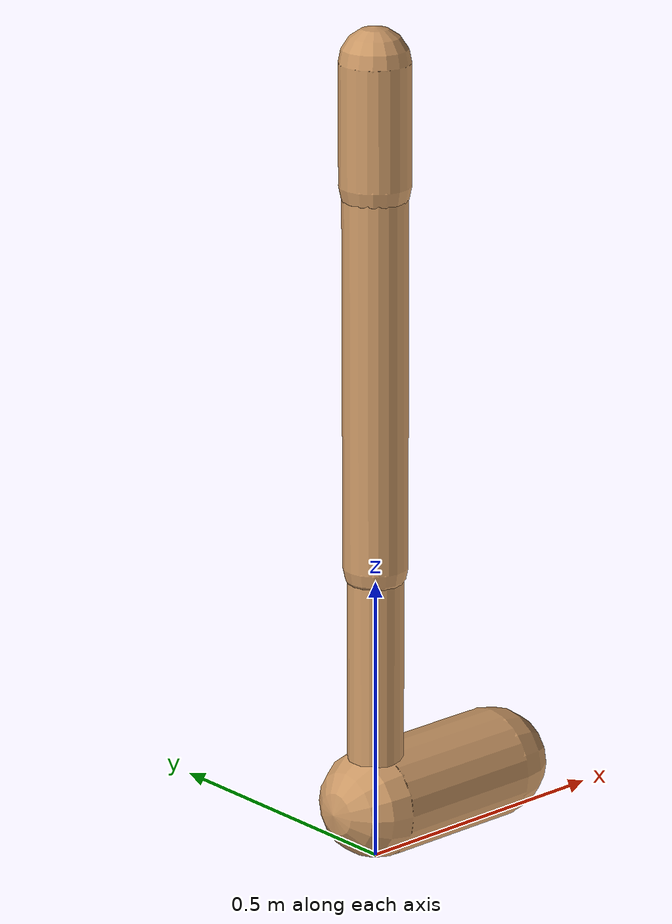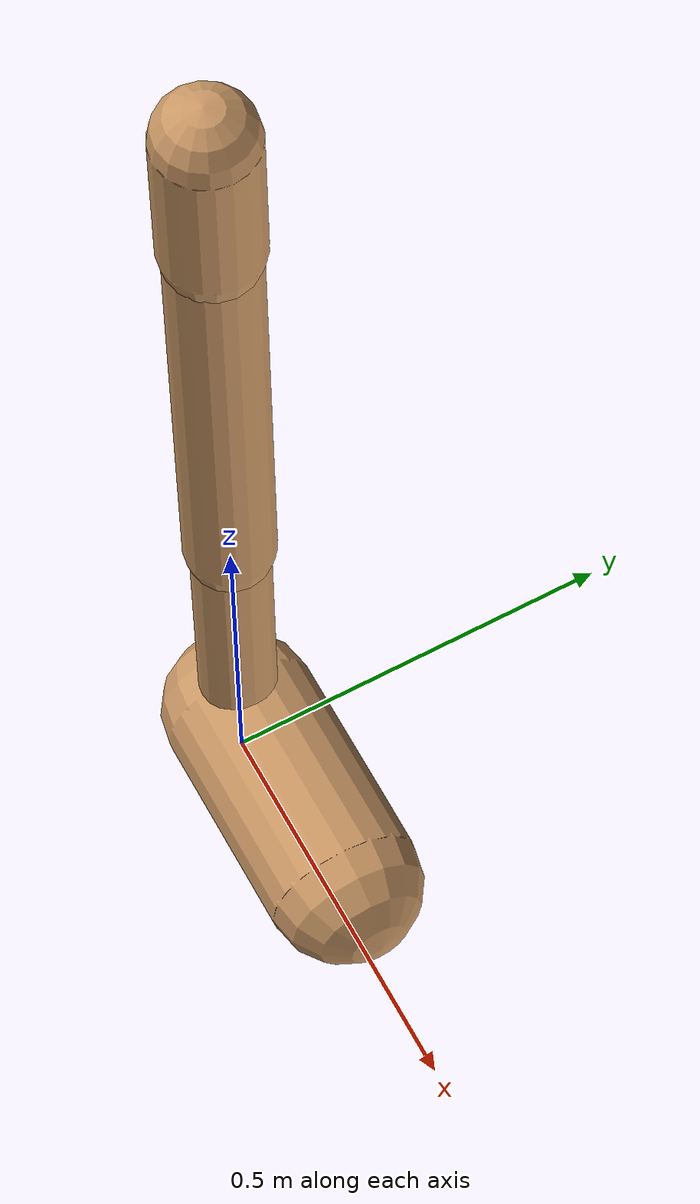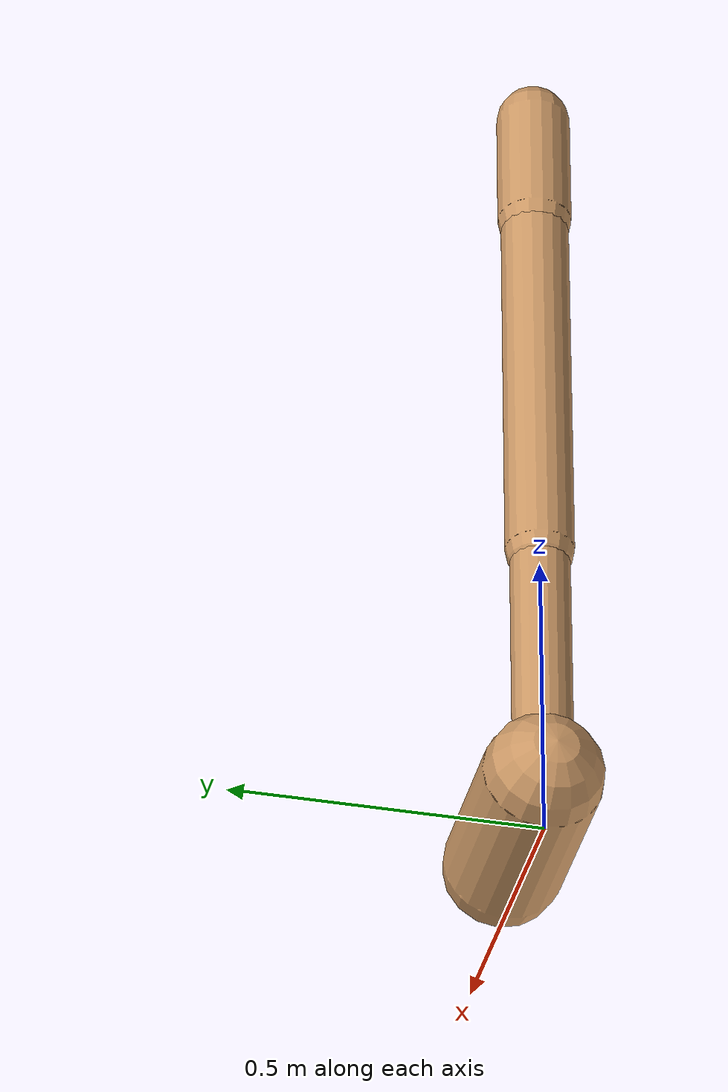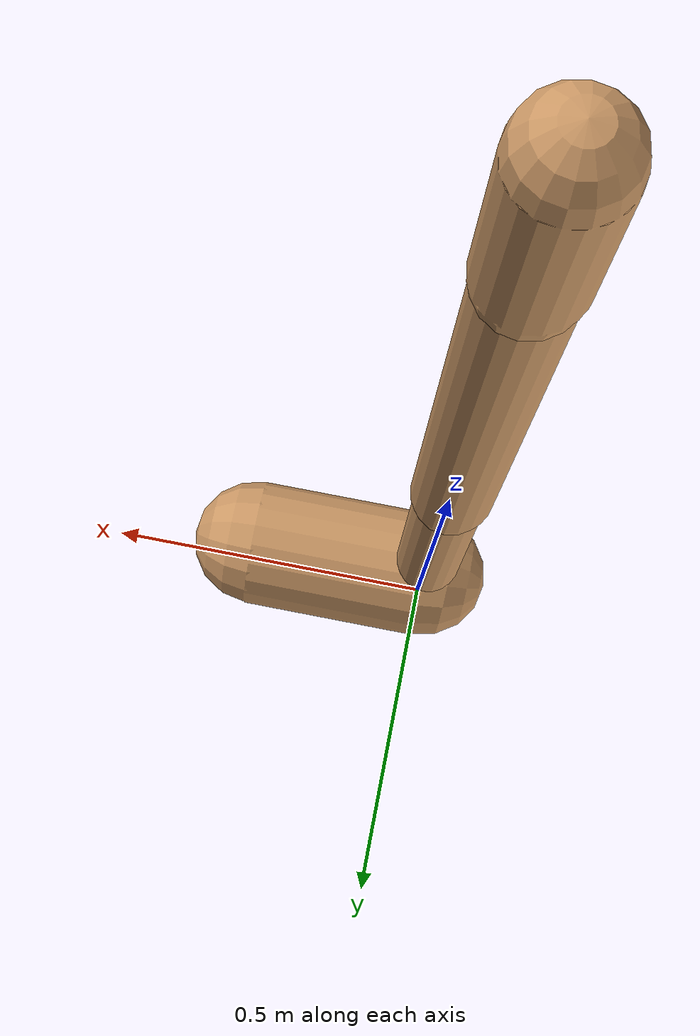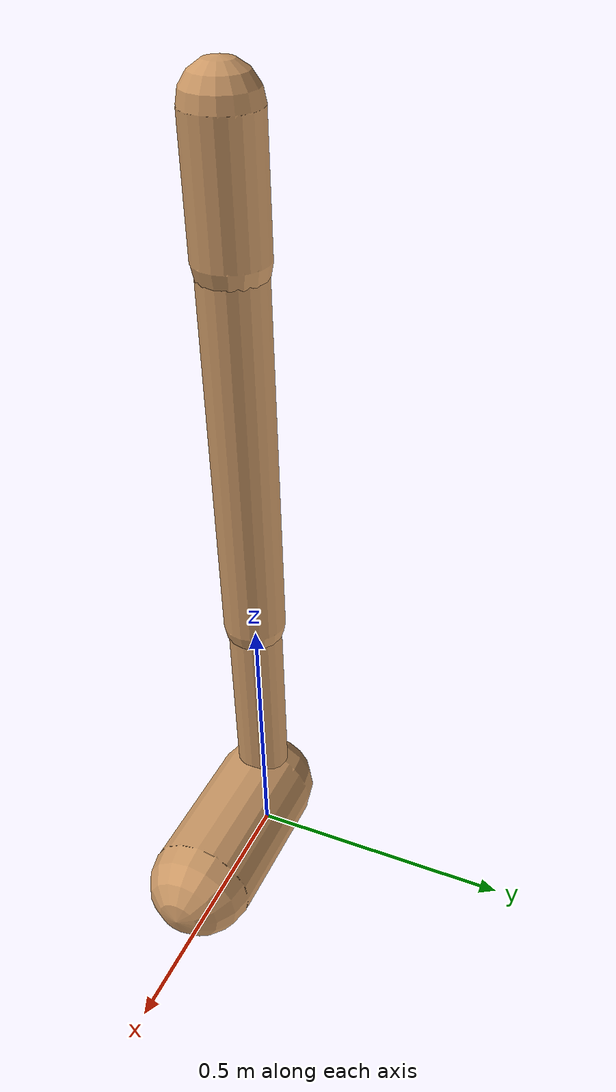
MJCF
<mujoco model="walker2d">
    <compiler angle="degree" coordinate="global" inertiafromgeom="true" />
    <default>
        <joint armature="0.01" damping=".1" limited="true" />
        <geom conaffinity="0" condim="3" contype="1" density="1000" friction="0.8 .1 .1" rgba="0.8 0.6 .4 1" />
    </default>
    <option integrator="RK4" timestep="0.002" />
    <worldbody>
        <body name="torso">
            <geom fromto="0 0 1.4043 0 0 1.1959" name="torso_geom" size="0.061" type="capsule" />
            <body name="thigh">
                <joint axis="0 -1 0" name="thigh_joint" pos="0 0 1.1959" range="-60 60" type="hinge" />
                <geom fromto="0 0 1.1959 0 0 0.5288" name="thigh_geom" size="0.0559" type="capsule" />
                <body name="leg">
                    <joint axis="0 -1 0" name="leg_joint" pos="0 0 0.5288" range="-150 0" type="hinge" />
                    <geom fromto="0 0 0.5288 0 0 0.1" name="leg_geom" size="0.0486" type="capsule" />
                    <body name="foot">
                        <joint axis="0 -1 0" name="foot_joint" pos="0 0 0.1" range="-45 45" type="hinge" />
                        <geom fromto="0 0 0.1 0.2711 0 0.1" name="foot_geom" size="0.0975" type="capsule" />
                    </body>
                </body>
            </body>
            <body name="thigh_left">
                <joint axis="0 -1 0" name="thigh_left_joint" pos="0 0 1.1959" range="-60 60" type="hinge" />
                <geom fromto="0 0 1.1959 0 0 0.5288" name="thigh_left_geom" rgba=".7 .3 .6 1" size="0.0559" type="capsule" />
                <body name="leg_left">
                    <joint axis="0 -1 0" name="leg_left_joint" pos="0 0 0.5288" range="-150 0" type="hinge" />
                    <geom fromto="0 0 0.5288 0 0 0.1" name="leg_left_geom" rgba=".7 .3 .6 1" size="0.0486" type="capsule" />
                    <body name="foot_left">
                        <joint axis="0 -1 0" name="foot_left_joint" pos="0 0 0.1" range="-45 45" type="hinge" />
                        <geom fromto="0 0 0.1 0.2711 0 0.1" name="foot_left_geom" rgba=".7 .3 .6 1" size="0.0975" type="capsule" />
                    </body>
                </body>
            </body>
        </body>
    </worldbody>
    <actuator>
        <motor ctrllimited="true" ctrlrange="-1.0 1.0" gear="100" joint="thigh_joint" />
        <motor ctrllimited="true" ctrlrange="-1.0 1.0" gear="100" joint="leg_joint" />
        <motor ctrllimited="true" ctrlrange="-1.0 1.0" gear="100" joint="foot_joint" />
        <motor ctrllimited="true" ctrlrange="-1.0 1.0" gear="100" joint="thigh_left_joint" />
        <motor ctrllimited="true" ctrlrange="-1.0 1.0" gear="100" joint="leg_left_joint" />
        <motor ctrllimited="true" ctrlrange="-1.0 1.0" gear="100" joint="foot_left_joint" />
    </actuator>
</mujoco>
